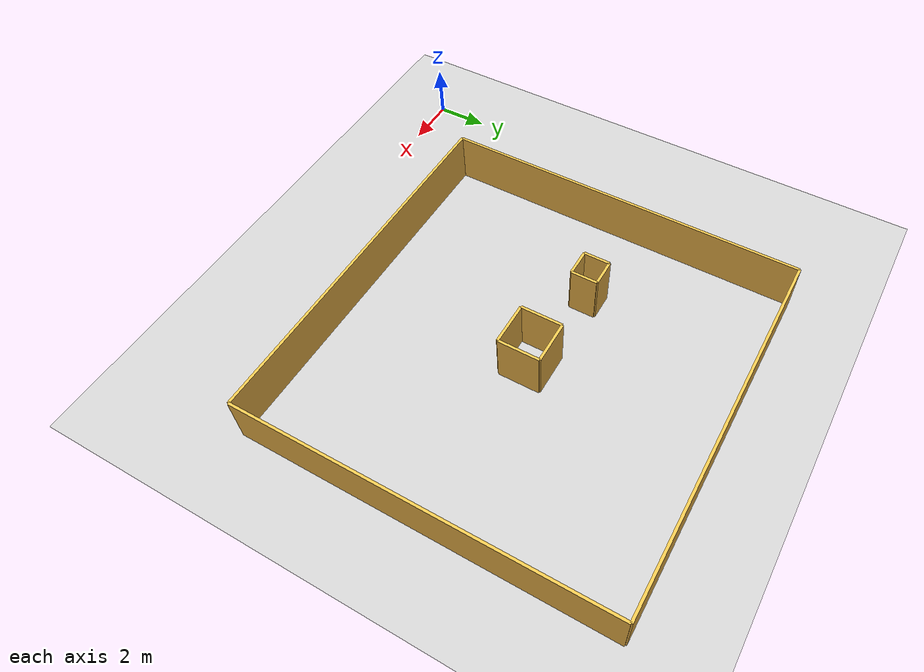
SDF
<sdf version="1.6">
 <world name="default">
  <light name="sun" type="directional">
   <cast_shadows>0</cast_shadows>
   <pose>0 0 10 0 -0 0</pose>
   <diffuse>0.8 0.8 0.8 1</diffuse>
   <specular>0.2 0.2 0.2 1</specular>
   <attenuation>
    <range>1000</range>
    <constant>0.9</constant>
    <linear>0.01</linear>
    <quadratic>0.001</quadratic>
   </attenuation>
   <direction>0.5 0.1 -0.9</direction>
  </light>
  <model name="ground_plane">
   <static>1</static>
   <link name="link">
    <collision name="collision">
     <geometry><plane><normal>0 0 1</normal><size>100 100</size></plane></geometry>
     <surface><friction><ode><mu>100</mu><mu2>50</mu2></ode></friction></surface>
    </collision>
    <visual name="visual">
     <cast_shadows>0</cast_shadows>
     <geometry><plane><normal>0 0 1</normal><size>100 100</size></plane></geometry>
     <material>
      <script><uri>file://media/materials/scripts/gazebo.material</uri><name>Gazebo/Grey</name></script>
     </material>
    </visual>
    <velocity_decay><linear>0</linear><angular>0</angular></velocity_decay>
   </link>
  </model>
  <scene><ambient>0.4 0.4 0.4 1</ambient><background>0.7 0.7 0.7 1</background><shadows>0</shadows></scene>
  <gravity>0 0 -9.8</gravity>
  <physics type="ode">
   <max_step_size>0.001</max_step_size>
   <real_time_factor>1</real_time_factor>
   <real_time_update_rate>500</real_time_update_rate>
  </physics>
  <include><uri>model://test_data_original</uri></include>
 </world>
</sdf>

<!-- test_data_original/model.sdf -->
<sdf version="1.6">
  <model name="test_data_original">
    <static>true</static>
    <link name="wall_0">
      <pose>9.2 10.0 1.0 0 0 1.5707963267948966</pose>
      <self_collide>0</self_collide>
      <kinematic>0</kinematic>
      <visual name="wall_0_visual">
        <geometry>
          <box>
            <size>1.6000000000000014 0.1 2.0</size>
            </box>
          </geometry>
        <material>
          <script>
            <uri>file://media/materials/scripts/gazebo.material</uri>
            <name>Gazebo/Grey</name>
            </script>
          <ambient>1 0.764706 0.305882 1</ambient>
          <diffuse>0.7 0.7 0.7 1</diffuse>
          <specular>0.01 0.01 0.01 1</specular>
          <emissive>0 0 0 1</emissive>
          <shader type="pixel" />
          </material>
        <cast_shadows>1</cast_shadows>
        <transparency>0</transparency>
        </visual>
      <collision name="wall_0_collision">
        <geometry>
          <box>
            <size>1.6000000000000014 0.1 2.0</size>
            </box>
          </geometry>
        <laser_retro>0</laser_retro>
        <max_contacts>10</max_contacts>
        <surface>
          <friction>
            <ode>
              <mu>1</mu>
              <mu2>1</mu2>
              <fdir1>0 0 0</fdir1>
              <slip1>0</slip1>
              <slip2>0</slip2>
              </ode>
            </friction>
          <bounce>
            <restitution_coefficient>0</restitution_coefficient>
            <threshold>1000000</threshold>
            </bounce>
          <contact>
            <collide_without_contact>0</collide_without_contact>
            <collide_without_contact_bitmask>1</collide_without_contact_bitmask>
            <collide_bitmask>1</collide_bitmask>
            <ode>
              <soft_cfm>0</soft_cfm>
              <soft_erp>0.2</soft_erp>
              <kp>10000000000000.0</kp>
              <kd>1</kd>
              <max_vel>0.01</max_vel>
              <min_depth>0</min_depth>
              </ode>
            <bullet>
              <split_impulse>1</split_impulse>
              <split_impulse_penetration_threshold>-0.01</split_impulse_penetration_threshold>
              <soft_cfm>0</soft_cfm>
              <soft_erp>0.2</soft_erp>
              <kp>10000000000000.0</kp>
              <kd>1</kd>
              </bullet>
            </contact>
          </surface>
        </collision>
      </link>
    <link name="wall_1">
      <pose>10.0 10.8 1.0 0 0 0.0</pose>
      <self_collide>0</self_collide>
      <kinematic>0</kinematic>
      <visual name="wall_1_visual">
        <geometry>
          <box>
            <size>1.6000000000000014 0.1 2.0</size>
            </box>
          </geometry>
        <material>
          <script>
            <uri>file://media/materials/scripts/gazebo.material</uri>
            <name>Gazebo/Grey</name>
            </script>
          <ambient>1 0.764706 0.305882 1</ambient>
          <diffuse>0.7 0.7 0.7 1</diffuse>
          <specular>0.01 0.01 0.01 1</specular>
          <emissive>0 0 0 1</emissive>
          <shader type="pixel" />
          </material>
        <cast_shadows>1</cast_shadows>
        <transparency>0</transparency>
        </visual>
      <collision name="wall_1_collision">
        <geometry>
          <box>
            <size>1.6000000000000014 0.1 2.0</size>
            </box>
          </geometry>
        <laser_retro>0</laser_retro>
        <max_contacts>10</max_contacts>
        <surface>
          <friction>
            <ode>
              <mu>1</mu>
              <mu2>1</mu2>
              <fdir1>0 0 0</fdir1>
              <slip1>0</slip1>
              <slip2>0</slip2>
              </ode>
            </friction>
          <bounce>
            <restitution_coefficient>0</restitution_coefficient>
            <threshold>1000000</threshold>
            </bounce>
          <contact>
            <collide_without_contact>0</collide_without_contact>
            <collide_without_contact_bitmask>1</collide_without_contact_bitmask>
            <collide_bitmask>1</collide_bitmask>
            <ode>
              <soft_cfm>0</soft_cfm>
              <soft_erp>0.2</soft_erp>
              <kp>10000000000000.0</kp>
              <kd>1</kd>
              <max_vel>0.01</max_vel>
              <min_depth>0</min_depth>
              </ode>
            <bullet>
              <split_impulse>1</split_impulse>
              <split_impulse_penetration_threshold>-0.01</split_impulse_penetration_threshold>
              <soft_cfm>0</soft_cfm>
              <soft_erp>0.2</soft_erp>
              <kp>10000000000000.0</kp>
              <kd>1</kd>
              </bullet>
            </contact>
          </surface>
        </collision>
      </link>
    <link name="wall_2">
      <pose>10.8 10.0 1.0 0 0 -1.5707963267948966</pose>
      <self_collide>0</self_collide>
      <kinematic>0</kinematic>
      <visual name="wall_2_visual">
        <geometry>
          <box>
            <size>1.6000000000000014 0.1 2.0</size>
            </box>
          </geometry>
        <material>
          <script>
            <uri>file://media/materials/scripts/gazebo.material</uri>
            <name>Gazebo/Grey</name>
            </script>
          <ambient>1 0.764706 0.305882 1</ambient>
          <diffuse>0.7 0.7 0.7 1</diffuse>
          <specular>0.01 0.01 0.01 1</specular>
          <emissive>0 0 0 1</emissive>
          <shader type="pixel" />
          </material>
        <cast_shadows>1</cast_shadows>
        <transparency>0</transparency>
        </visual>
      <collision name="wall_2_collision">
        <geometry>
          <box>
            <size>1.6000000000000014 0.1 2.0</size>
            </box>
          </geometry>
        <laser_retro>0</laser_retro>
        <max_contacts>10</max_contacts>
        <surface>
          <friction>
            <ode>
              <mu>1</mu>
              <mu2>1</mu2>
              <fdir1>0 0 0</fdir1>
              <slip1>0</slip1>
              <slip2>0</slip2>
              </ode>
            </friction>
          <bounce>
            <restitution_coefficient>0</restitution_coefficient>
            <threshold>1000000</threshold>
            </bounce>
          <contact>
            <collide_without_contact>0</collide_without_contact>
            <collide_without_contact_bitmask>1</collide_without_contact_bitmask>
            <collide_bitmask>1</collide_bitmask>
            <ode>
              <soft_cfm>0</soft_cfm>
              <soft_erp>0.2</soft_erp>
              <kp>10000000000000.0</kp>
              <kd>1</kd>
              <max_vel>0.01</max_vel>
              <min_depth>0</min_depth>
              </ode>
            <bullet>
              <split_impulse>1</split_impulse>
              <split_impulse_penetration_threshold>-0.01</split_impulse_penetration_threshold>
              <soft_cfm>0</soft_cfm>
              <soft_erp>0.2</soft_erp>
              <kp>10000000000000.0</kp>
              <kd>1</kd>
              </bullet>
            </contact>
          </surface>
        </collision>
      </link>
    <link name="wall_3">
      <pose>10.0 9.2 1.0 0 0 3.141592653589793</pose>
      <self_collide>0</self_collide>
      <kinematic>0</kinematic>
      <visual name="wall_3_visual">
        <geometry>
          <box>
            <size>1.6000000000000014 0.1 2.0</size>
            </box>
          </geometry>
        <material>
          <script>
            <uri>file://media/materials/scripts/gazebo.material</uri>
            <name>Gazebo/Grey</name>
            </script>
          <ambient>1 0.764706 0.305882 1</ambient>
          <diffuse>0.7 0.7 0.7 1</diffuse>
          <specular>0.01 0.01 0.01 1</specular>
          <emissive>0 0 0 1</emissive>
          <shader type="pixel" />
          </material>
        <cast_shadows>1</cast_shadows>
        <transparency>0</transparency>
        </visual>
      <collision name="wall_3_collision">
        <geometry>
          <box>
            <size>1.6000000000000014 0.1 2.0</size>
            </box>
          </geometry>
        <laser_retro>0</laser_retro>
        <max_contacts>10</max_contacts>
        <surface>
          <friction>
            <ode>
              <mu>1</mu>
              <mu2>1</mu2>
              <fdir1>0 0 0</fdir1>
              <slip1>0</slip1>
              <slip2>0</slip2>
              </ode>
            </friction>
          <bounce>
            <restitution_coefficient>0</restitution_coefficient>
            <threshold>1000000</threshold>
            </bounce>
          <contact>
            <collide_without_contact>0</collide_without_contact>
            <collide_without_contact_bitmask>1</collide_without_contact_bitmask>
            <collide_bitmask>1</collide_bitmask>
            <ode>
              <soft_cfm>0</soft_cfm>
              <soft_erp>0.2</soft_erp>
              <kp>10000000000000.0</kp>
              <kd>1</kd>
              <max_vel>0.01</max_vel>
              <min_depth>0</min_depth>
              </ode>
            <bullet>
              <split_impulse>1</split_impulse>
              <split_impulse_penetration_threshold>-0.01</split_impulse_penetration_threshold>
              <soft_cfm>0</soft_cfm>
              <soft_erp>0.2</soft_erp>
              <kp>10000000000000.0</kp>
              <kd>1</kd>
              </bullet>
            </contact>
          </surface>
        </collision>
      </link>
    <link name="wall_4">
      <pose>6.5 10.0 1.0 0 0 0.0</pose>
      <self_collide>0</self_collide>
      <kinematic>0</kinematic>
      <visual name="wall_4_visual">
        <geometry>
          <box>
            <size>1.0 0.1 2.0</size>
            </box>
          </geometry>
        <material>
          <script>
            <uri>file://media/materials/scripts/gazebo.material</uri>
            <name>Gazebo/Grey</name>
            </script>
          <ambient>1 0.764706 0.305882 1</ambient>
          <diffuse>0.7 0.7 0.7 1</diffuse>
          <specular>0.01 0.01 0.01 1</specular>
          <emissive>0 0 0 1</emissive>
          <shader type="pixel" />
          </material>
        <cast_shadows>1</cast_shadows>
        <transparency>0</transparency>
        </visual>
      <collision name="wall_4_collision">
        <geometry>
          <box>
            <size>1.0 0.1 2.0</size>
            </box>
          </geometry>
        <laser_retro>0</laser_retro>
        <max_contacts>10</max_contacts>
        <surface>
          <friction>
            <ode>
              <mu>1</mu>
              <mu2>1</mu2>
              <fdir1>0 0 0</fdir1>
              <slip1>0</slip1>
              <slip2>0</slip2>
              </ode>
            </friction>
          <bounce>
            <restitution_coefficient>0</restitution_coefficient>
            <threshold>1000000</threshold>
            </bounce>
          <contact>
            <collide_without_contact>0</collide_without_contact>
            <collide_without_contact_bitmask>1</collide_without_contact_bitmask>
            <collide_bitmask>1</collide_bitmask>
            <ode>
              <soft_cfm>0</soft_cfm>
              <soft_erp>0.2</soft_erp>
              <kp>10000000000000.0</kp>
              <kd>1</kd>
              <max_vel>0.01</max_vel>
              <min_depth>0</min_depth>
              </ode>
            <bullet>
              <split_impulse>1</split_impulse>
              <split_impulse_penetration_threshold>-0.01</split_impulse_penetration_threshold>
              <soft_cfm>0</soft_cfm>
              <soft_erp>0.2</soft_erp>
              <kp>10000000000000.0</kp>
              <kd>1</kd>
              </bullet>
            </contact>
          </surface>
        </collision>
      </link>
    <link name="wall_5">
      <pose>7.0 10.5 1.0 0 0 1.5707963267948966</pose>
      <self_collide>0</self_collide>
      <kinematic>0</kinematic>
      <visual name="wall_5_visual">
        <geometry>
          <box>
            <size>1.0 0.1 2.0</size>
            </box>
          </geometry>
        <material>
          <script>
            <uri>file://media/materials/scripts/gazebo.material</uri>
            <name>Gazebo/Grey</name>
            </script>
          <ambient>1 0.764706 0.305882 1</ambient>
          <diffuse>0.7 0.7 0.7 1</diffuse>
          <specular>0.01 0.01 0.01 1</specular>
          <emissive>0 0 0 1</emissive>
          <shader type="pixel" />
          </material>
        <cast_shadows>1</cast_shadows>
        <transparency>0</transparency>
        </visual>
      <collision name="wall_5_collision">
        <geometry>
          <box>
            <size>1.0 0.1 2.0</size>
            </box>
          </geometry>
        <laser_retro>0</laser_retro>
        <max_contacts>10</max_contacts>
        <surface>
          <friction>
            <ode>
              <mu>1</mu>
              <mu2>1</mu2>
              <fdir1>0 0 0</fdir1>
              <slip1>0</slip1>
              <slip2>0</slip2>
              </ode>
            </friction>
          <bounce>
            <restitution_coefficient>0</restitution_coefficient>
            <threshold>1000000</threshold>
            </bounce>
          <contact>
            <collide_without_contact>0</collide_without_contact>
            <collide_without_contact_bitmask>1</collide_without_contact_bitmask>
            <collide_bitmask>1</collide_bitmask>
            <ode>
              <soft_cfm>0</soft_cfm>
              <soft_erp>0.2</soft_erp>
              <kp>10000000000000.0</kp>
              <kd>1</kd>
              <max_vel>0.01</max_vel>
              <min_depth>0</min_depth>
              </ode>
            <bullet>
              <split_impulse>1</split_impulse>
              <split_impulse_penetration_threshold>-0.01</split_impulse_penetration_threshold>
              <soft_cfm>0</soft_cfm>
              <soft_erp>0.2</soft_erp>
              <kp>10000000000000.0</kp>
              <kd>1</kd>
              </bullet>
            </contact>
          </surface>
        </collision>
      </link>
    <link name="wall_6">
      <pose>6.5 11.0 1.0 0 0 3.141592653589793</pose>
      <self_collide>0</self_collide>
      <kinematic>0</kinematic>
      <visual name="wall_6_visual">
        <geometry>
          <box>
            <size>1.0 0.1 2.0</size>
            </box>
          </geometry>
        <material>
          <script>
            <uri>file://media/materials/scripts/gazebo.material</uri>
            <name>Gazebo/Grey</name>
            </script>
          <ambient>1 0.764706 0.305882 1</ambient>
          <diffuse>0.7 0.7 0.7 1</diffuse>
          <specular>0.01 0.01 0.01 1</specular>
          <emissive>0 0 0 1</emissive>
          <shader type="pixel" />
          </material>
        <cast_shadows>1</cast_shadows>
        <transparency>0</transparency>
        </visual>
      <collision name="wall_6_collision">
        <geometry>
          <box>
            <size>1.0 0.1 2.0</size>
            </box>
          </geometry>
        <laser_retro>0</laser_retro>
        <max_contacts>10</max_contacts>
        <surface>
          <friction>
            <ode>
              <mu>1</mu>
              <mu2>1</mu2>
              <fdir1>0 0 0</fdir1>
              <slip1>0</slip1>
              <slip2>0</slip2>
              </ode>
            </friction>
          <bounce>
            <restitution_coefficient>0</restitution_coefficient>
            <threshold>1000000</threshold>
            </bounce>
          <contact>
            <collide_without_contact>0</collide_without_contact>
            <collide_without_contact_bitmask>1</collide_without_contact_bitmask>
            <collide_bitmask>1</collide_bitmask>
            <ode>
              <soft_cfm>0</soft_cfm>
              <soft_erp>0.2</soft_erp>
              <kp>10000000000000.0</kp>
              <kd>1</kd>
              <max_vel>0.01</max_vel>
              <min_depth>0</min_depth>
              </ode>
            <bullet>
              <split_impulse>1</split_impulse>
              <split_impulse_penetration_threshold>-0.01</split_impulse_penetration_threshold>
              <soft_cfm>0</soft_cfm>
              <soft_erp>0.2</soft_erp>
              <kp>10000000000000.0</kp>
              <kd>1</kd>
              </bullet>
            </contact>
          </surface>
        </collision>
      </link>
    <link name="wall_7">
      <pose>6.0 10.5 1.0 0 0 -1.5707963267948966</pose>
      <self_collide>0</self_collide>
      <kinematic>0</kinematic>
      <visual name="wall_7_visual">
        <geometry>
          <box>
            <size>1.0 0.1 2.0</size>
            </box>
          </geometry>
        <material>
          <script>
            <uri>file://media/materials/scripts/gazebo.material</uri>
            <name>Gazebo/Grey</name>
            </script>
          <ambient>1 0.764706 0.305882 1</ambient>
          <diffuse>0.7 0.7 0.7 1</diffuse>
          <specular>0.01 0.01 0.01 1</specular>
          <emissive>0 0 0 1</emissive>
          <shader type="pixel" />
          </material>
        <cast_shadows>1</cast_shadows>
        <transparency>0</transparency>
        </visual>
      <collision name="wall_7_collision">
        <geometry>
          <box>
            <size>1.0 0.1 2.0</size>
            </box>
          </geometry>
        <laser_retro>0</laser_retro>
        <max_contacts>10</max_contacts>
        <surface>
          <friction>
            <ode>
              <mu>1</mu>
              <mu2>1</mu2>
              <fdir1>0 0 0</fdir1>
              <slip1>0</slip1>
              <slip2>0</slip2>
              </ode>
            </friction>
          <bounce>
            <restitution_coefficient>0</restitution_coefficient>
            <threshold>1000000</threshold>
            </bounce>
          <contact>
            <collide_without_contact>0</collide_without_contact>
            <collide_without_contact_bitmask>1</collide_without_contact_bitmask>
            <collide_bitmask>1</collide_bitmask>
            <ode>
              <soft_cfm>0</soft_cfm>
              <soft_erp>0.2</soft_erp>
              <kp>10000000000000.0</kp>
              <kd>1</kd>
              <max_vel>0.01</max_vel>
              <min_depth>0</min_depth>
              </ode>
            <bullet>
              <split_impulse>1</split_impulse>
              <split_impulse_penetration_threshold>-0.01</split_impulse_penetration_threshold>
              <soft_cfm>0</soft_cfm>
              <soft_erp>0.2</soft_erp>
              <kp>10000000000000.0</kp>
              <kd>1</kd>
              </bullet>
            </contact>
          </surface>
        </collision>
      </link>
    <link name="wall_8">
      <pose>10.0 3.0 1.0 0 0 0.0</pose>
      <self_collide>0</self_collide>
      <kinematic>0</kinematic>
      <visual name="wall_8_visual">
        <geometry>
          <box>
            <size>14.0 0.1 2.0</size>
            </box>
          </geometry>
        <material>
          <script>
            <uri>file://media/materials/scripts/gazebo.material</uri>
            <name>Gazebo/Grey</name>
            </script>
          <ambient>1 0.764706 0.305882 1</ambient>
          <diffuse>0.7 0.7 0.7 1</diffuse>
          <specular>0.01 0.01 0.01 1</specular>
          <emissive>0 0 0 1</emissive>
          <shader type="pixel" />
          </material>
        <cast_shadows>1</cast_shadows>
        <transparency>0</transparency>
        </visual>
      <collision name="wall_8_collision">
        <geometry>
          <box>
            <size>14.0 0.1 2.0</size>
            </box>
          </geometry>
        <laser_retro>0</laser_retro>
        <max_contacts>10</max_contacts>
        <surface>
          <friction>
            <ode>
              <mu>1</mu>
              <mu2>1</mu2>
              <fdir1>0 0 0</fdir1>
              <slip1>0</slip1>
              <slip2>0</slip2>
              </ode>
            </friction>
          <bounce>
            <restitution_coefficient>0</restitution_coefficient>
            <threshold>1000000</threshold>
            </bounce>
          <contact>
            <collide_without_contact>0</collide_without_contact>
            <collide_without_contact_bitmask>1</collide_without_contact_bitmask>
            <collide_bitmask>1</collide_bitmask>
            <ode>
              <soft_cfm>0</soft_cfm>
              <soft_erp>0.2</soft_erp>
              <kp>10000000000000.0</kp>
              <kd>1</kd>
              <max_vel>0.01</max_vel>
              <min_depth>0</min_depth>
              </ode>
            <bullet>
              <split_impulse>1</split_impulse>
              <split_impulse_penetration_threshold>-0.01</split_impulse_penetration_threshold>
              <soft_cfm>0</soft_cfm>
              <soft_erp>0.2</soft_erp>
              <kp>10000000000000.0</kp>
              <kd>1</kd>
              </bullet>
            </contact>
          </surface>
        </collision>
      </link>
    <link name="wall_9">
      <pose>17.0 10.0 1.0 0 0 1.5707963267948966</pose>
      <self_collide>0</self_collide>
      <kinematic>0</kinematic>
      <visual name="wall_9_visual">
        <geometry>
          <box>
            <size>14.0 0.1 2.0</size>
            </box>
          </geometry>
        <material>
          <script>
            <uri>file://media/materials/scripts/gazebo.material</uri>
            <name>Gazebo/Grey</name>
            </script>
          <ambient>1 0.764706 0.305882 1</ambient>
          <diffuse>0.7 0.7 0.7 1</diffuse>
          <specular>0.01 0.01 0.01 1</specular>
          <emissive>0 0 0 1</emissive>
          <shader type="pixel" />
          </material>
        <cast_shadows>1</cast_shadows>
        <transparency>0</transparency>
        </visual>
      <collision name="wall_9_collision">
        <geometry>
          <box>
            <size>14.0 0.1 2.0</size>
            </box>
          </geometry>
        <laser_retro>0</laser_retro>
        <max_contacts>10</max_contacts>
        <surface>
          <friction>
            <ode>
              <mu>1</mu>
              <mu2>1</mu2>
              <fdir1>0 0 0</fdir1>
              <slip1>0</slip1>
              <slip2>0</slip2>
              </ode>
            </friction>
          <bounce>
            <restitution_coefficient>0</restitution_coefficient>
            <threshold>1000000</threshold>
            </bounce>
          <contact>
            <collide_without_contact>0</collide_without_contact>
            <collide_without_contact_bitmask>1</collide_without_contact_bitmask>
            <collide_bitmask>1</collide_bitmask>
            <ode>
              <soft_cfm>0</soft_cfm>
              <soft_erp>0.2</soft_erp>
              <kp>10000000000000.0</kp>
              <kd>1</kd>
              <max_vel>0.01</max_vel>
              <min_depth>0</min_depth>
              </ode>
            <bullet>
              <split_impulse>1</split_impulse>
              <split_impulse_penetration_threshold>-0.01</split_impulse_penetration_threshold>
              <soft_cfm>0</soft_cfm>
              <soft_erp>0.2</soft_erp>
              <kp>10000000000000.0</kp>
              <kd>1</kd>
              </bullet>
            </contact>
          </surface>
        </collision>
      </link>
    <link name="wall_10">
      <pose>10.0 17.0 1.0 0 0 3.141592653589793</pose>
      <self_collide>0</self_collide>
      <kinematic>0</kinematic>
      <visual name="wall_10_visual">
        <geometry>
          <box>
            <size>14.0 0.1 2.0</size>
            </box>
          </geometry>
        <material>
          <script>
            <uri>file://media/materials/scripts/gazebo.material</uri>
            <name>Gazebo/Grey</name>
            </script>
          <ambient>1 0.764706 0.305882 1</ambient>
          <diffuse>0.7 0.7 0.7 1</diffuse>
          <specular>0.01 0.01 0.01 1</specular>
          <emissive>0 0 0 1</emissive>
          <shader type="pixel" />
          </material>
        <cast_shadows>1</cast_shadows>
        <transparency>0</transparency>
        </visual>
      <collision name="wall_10_collision">
        <geometry>
          <box>
            <size>14.0 0.1 2.0</size>
            </box>
          </geometry>
        <laser_retro>0</laser_retro>
        <max_contacts>10</max_contacts>
        <surface>
          <friction>
            <ode>
              <mu>1</mu>
              <mu2>1</mu2>
              <fdir1>0 0 0</fdir1>
              <slip1>0</slip1>
              <slip2>0</slip2>
              </ode>
            </friction>
          <bounce>
            <restitution_coefficient>0</restitution_coefficient>
            <threshold>1000000</threshold>
            </bounce>
          <contact>
            <collide_without_contact>0</collide_without_contact>
            <collide_without_contact_bitmask>1</collide_without_contact_bitmask>
            <collide_bitmask>1</collide_bitmask>
            <ode>
              <soft_cfm>0</soft_cfm>
              <soft_erp>0.2</soft_erp>
              <kp>10000000000000.0</kp>
              <kd>1</kd>
              <max_vel>0.01</max_vel>
              <min_depth>0</min_depth>
              </ode>
            <bullet>
              <split_impulse>1</split_impulse>
              <split_impulse_penetration_threshold>-0.01</split_impulse_penetration_threshold>
              <soft_cfm>0</soft_cfm>
              <soft_erp>0.2</soft_erp>
              <kp>10000000000000.0</kp>
              <kd>1</kd>
              </bullet>
            </contact>
          </surface>
        </collision>
      </link>
    <link name="wall_11">
      <pose>3.0 10.0 1.0 0 0 -1.5707963267948966</pose>
      <self_collide>0</self_collide>
      <kinematic>0</kinematic>
      <visual name="wall_11_visual">
        <geometry>
          <box>
            <size>14.0 0.1 2.0</size>
            </box>
          </geometry>
        <material>
          <script>
            <uri>file://media/materials/scripts/gazebo.material</uri>
            <name>Gazebo/Grey</name>
            </script>
          <ambient>1 0.764706 0.305882 1</ambient>
          <diffuse>0.7 0.7 0.7 1</diffuse>
          <specular>0.01 0.01 0.01 1</specular>
          <emissive>0 0 0 1</emissive>
          <shader type="pixel" />
          </material>
        <cast_shadows>1</cast_shadows>
        <transparency>0</transparency>
        </visual>
      <collision name="wall_11_collision">
        <geometry>
          <box>
            <size>14.0 0.1 2.0</size>
            </box>
          </geometry>
        <laser_retro>0</laser_retro>
        <max_contacts>10</max_contacts>
        <surface>
          <friction>
            <ode>
              <mu>1</mu>
              <mu2>1</mu2>
              <fdir1>0 0 0</fdir1>
              <slip1>0</slip1>
              <slip2>0</slip2>
              </ode>
            </friction>
          <bounce>
            <restitution_coefficient>0</restitution_coefficient>
            <threshold>1000000</threshold>
            </bounce>
          <contact>
            <collide_without_contact>0</collide_without_contact>
            <collide_without_contact_bitmask>1</collide_without_contact_bitmask>
            <collide_bitmask>1</collide_bitmask>
            <ode>
              <soft_cfm>0</soft_cfm>
              <soft_erp>0.2</soft_erp>
              <kp>10000000000000.0</kp>
              <kd>1</kd>
              <max_vel>0.01</max_vel>
              <min_depth>0</min_depth>
              </ode>
            <bullet>
              <split_impulse>1</split_impulse>
              <split_impulse_penetration_threshold>-0.01</split_impulse_penetration_threshold>
              <soft_cfm>0</soft_cfm>
              <soft_erp>0.2</soft_erp>
              <kp>10000000000000.0</kp>
              <kd>1</kd>
              </bullet>
            </contact>
          </surface>
        </collision>
      </link>
    </model>
  </sdf>
